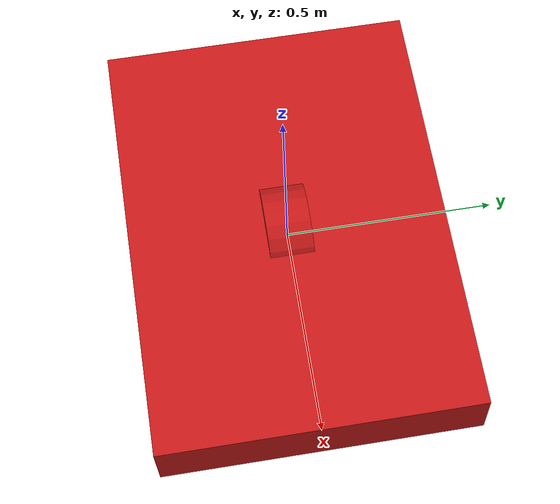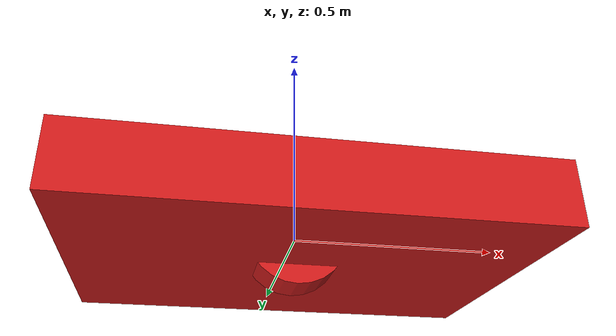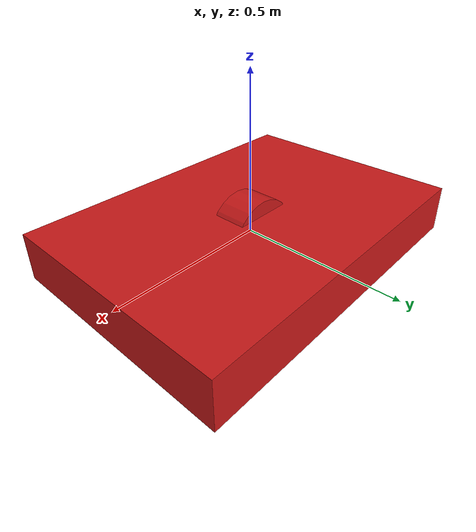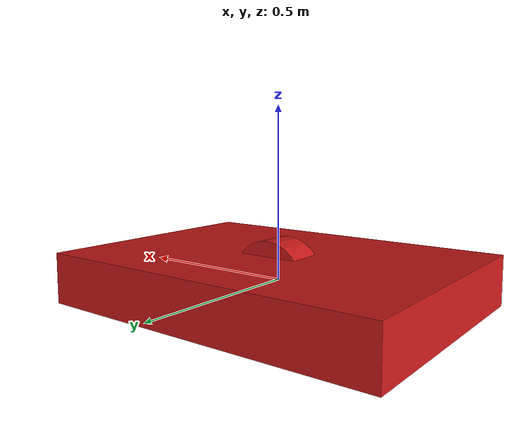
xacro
<?xml version="1.0"?>
<robot name="Logisticus" xmlns:xacro="http://www.ros.org/wiki/xacro">
  <!-- Include the required files -->
  <xacro:include filename="$(find description_package)/urdf/xacro/main_body.xacro" />
  <xacro:include filename="$(find description_package)/urdf/xacro/wheel.xacro" />

  <!-- Load the required visuals/links -->
  <xacro:main_body x="0.35" y="0.25" z="0.05"/>
  <xacro:wheel_link prefix="front_left" radius="0.04" width="0.035"/>

  <!-- Load the required joints -->
  <xacro:wheel_joint prefix="front_left" child="front_left"/>
</robot>

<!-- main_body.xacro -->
<robot name="" xmlns:xacro="http://www.ros.org/wiki/xacro">
  <xacro:macro name="main_body" params="x y z">
    <!-- Write some normal URDF code -->
    <link name="base_link"> <!-- Used as the base_link -->
      <visual>
        <origin xyz="0 0 0" rpy="0 0 0"/>
        <geometry>
          <box size="${x*3} ${y*3} ${z*3}"/>
        </geometry>
        <material name="red">
          <color rgba="0.8 0.1 0.1 1.0"/>
        </material>
      </visual>
    </link>
  </xacro:macro>
</robot>

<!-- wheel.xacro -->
<robot name="" xmlns:xacro="http://www.ros.org/wiki/xacro">
  <!-- Define the visual of the wheel -->
  <xacro:macro name="wheel_link" params="prefix radius width">
    <link name="${prefix}_wheel_link">
    <visual>
      <origin xyz="0 0 0" rpy="${pi/2} 0 0"/>
      <geometry>
        <cylinder radius="${radius*3}" length="${width*3}"/>
      </geometry>
      <material name="red">
        <color rgba="0.8 0.1 0.1 1.0"/>
      </material>
    </visual>
  </link>
  </xacro:macro>

  <!-- Define the joint of the wheel -->
  <xacro:macro name="wheel_joint" params="prefix child">
    <joint name="${prefix}_wheel_base_joint" type="continuous">
      <parent link="base_link"/>
      <child link="${child}_wheel_link"/>
      <origin xyz="0 0 0" rpy="0 0 0"/>
      <axis xyz="0 1 0"/>
    </joint>
  </xacro:macro>
</robot>
